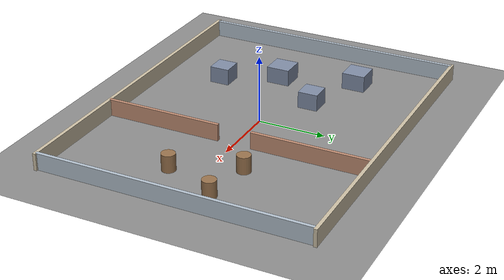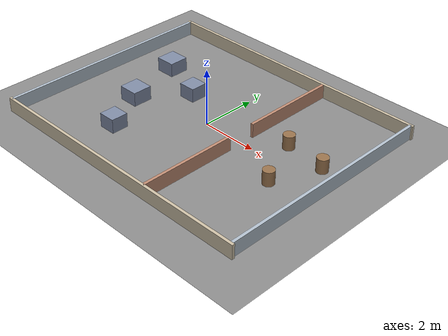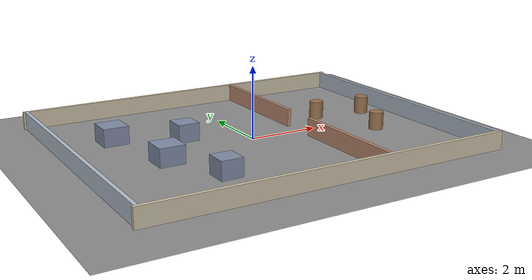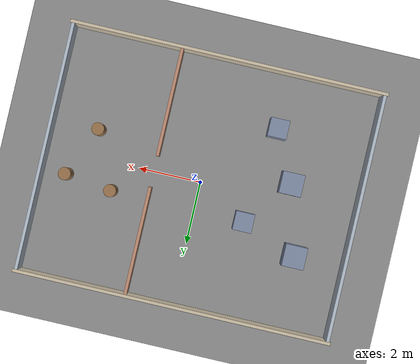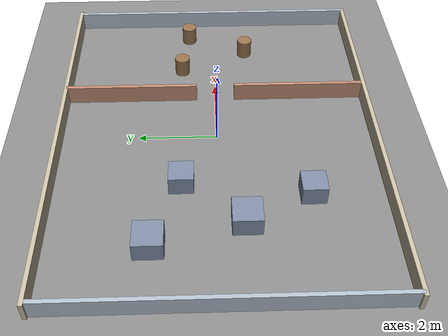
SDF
<?xml version="1.0" ?>
<!-- BARQ obstacle course (10 x 8 m): doorway -> slalom -> box field. Corridors ~1 m
     (footprint r=0.18 + inflation 0.30). All obstacles 0.5 m tall (lidar plane 0.21 m). -->
<sdf version="1.8">
  <world name="barq_course">
    <physics name="1ms" type="ignored">
      <max_step_size>0.001</max_step_size>
      <real_time_factor>1.0</real_time_factor>
    </physics>

    <plugin filename="ignition-gazebo-physics-system"
            name="ignition::gazebo::systems::Physics"/>
    <plugin filename="ignition-gazebo-user-commands-system"
            name="ignition::gazebo::systems::UserCommands"/>
    <plugin filename="ignition-gazebo-scene-broadcaster-system"
            name="ignition::gazebo::systems::SceneBroadcaster"/>
    <plugin filename="ignition-gazebo-contact-system"
            name="ignition::gazebo::systems::Contact"/>
    <plugin filename="ignition-gazebo-imu-system"
            name="ignition::gazebo::systems::Imu"/>
    <plugin filename="ignition-gazebo-sensors-system"
            name="ignition::gazebo::systems::Sensors">
      <render_engine>ogre2</render_engine>
    </plugin>

    <light type="directional" name="sun">
      <cast_shadows>true</cast_shadows>
      <pose>0 0 10 0 0 0</pose>
      <diffuse>0.8 0.8 0.8 1</diffuse>
      <specular>0.2 0.2 0.2 1</specular>
      <direction>-0.5 0.1 -0.9</direction>
    </light>

    <model name="course">
      <static>true</static>
      <link name="parts">
        <!-- outer walls (10 x 8) -->
        <collision name="wn"><pose>0 4 0.25 0 0 0</pose><geometry><box><size>10.2 0.1 0.5</size></box></geometry></collision>
        <visual name="wnv"><pose>0 4 0.25 0 0 0</pose><geometry><box><size>10.2 0.1 0.5</size></box></geometry>
          <material><ambient>0.8 0.75 0.65 1</ambient><diffuse>0.8 0.75 0.65 1</diffuse></material></visual>
        <collision name="ws"><pose>0 -4 0.25 0 0 0</pose><geometry><box><size>10.2 0.1 0.5</size></box></geometry></collision>
        <visual name="wsv"><pose>0 -4 0.25 0 0 0</pose><geometry><box><size>10.2 0.1 0.5</size></box></geometry>
          <material><ambient>0.8 0.75 0.65 1</ambient><diffuse>0.8 0.75 0.65 1</diffuse></material></visual>
        <collision name="we"><pose>5 0 0.25 0 0 0</pose><geometry><box><size>0.1 8 0.5</size></box></geometry></collision>
        <visual name="wev"><pose>5 0 0.25 0 0 0</pose><geometry><box><size>0.1 8 0.5</size></box></geometry>
          <material><ambient>0.7 0.75 0.8 1</ambient><diffuse>0.7 0.75 0.8 1</diffuse></material></visual>
        <collision name="ww"><pose>-5 0 0.25 0 0 0</pose><geometry><box><size>0.1 8 0.5</size></box></geometry></collision>
        <visual name="wwv"><pose>-5 0 0.25 0 0 0</pose><geometry><box><size>0.1 8 0.5</size></box></geometry>
          <material><ambient>0.7 0.75 0.8 1</ambient><diffuse>0.7 0.75 0.8 1</diffuse></material></visual>

        <!-- doorway wall at x=1.5 with a 1.0 m gap centered on y=0 -->
        <collision name="d1"><pose>1.5 2.25 0.25 0 0 0</pose><geometry><box><size>0.1 3.5 0.5</size></box></geometry></collision>
        <visual name="d1v"><pose>1.5 2.25 0.25 0 0 0</pose><geometry><box><size>0.1 3.5 0.5</size></box></geometry>
          <material><ambient>0.75 0.55 0.45 1</ambient><diffuse>0.75 0.55 0.45 1</diffuse></material></visual>
        <collision name="d2"><pose>1.5 -2.25 0.25 0 0 0</pose><geometry><box><size>0.1 3.5 0.5</size></box></geometry></collision>
        <visual name="d2v"><pose>1.5 -2.25 0.25 0 0 0</pose><geometry><box><size>0.1 3.5 0.5</size></box></geometry>
          <material><ambient>0.75 0.55 0.45 1</ambient><diffuse>0.75 0.55 0.45 1</diffuse></material></visual>

        <!-- slalom pillars beyond the doorway -->
        <collision name="s1"><pose>2.7 0.9 0.25 0 0 0</pose><geometry><cylinder><radius>0.2</radius><length>0.5</length></cylinder></geometry></collision>
        <visual name="s1v"><pose>2.7 0.9 0.25 0 0 0</pose><geometry><cylinder><radius>0.2</radius><length>0.5</length></cylinder></geometry>
          <material><ambient>0.6 0.45 0.3 1</ambient><diffuse>0.6 0.45 0.3 1</diffuse></material></visual>
        <collision name="s2"><pose>3.5 -0.9 0.25 0 0 0</pose><geometry><cylinder><radius>0.2</radius><length>0.5</length></cylinder></geometry></collision>
        <visual name="s2v"><pose>3.5 -0.9 0.25 0 0 0</pose><geometry><cylinder><radius>0.2</radius><length>0.5</length></cylinder></geometry>
          <material><ambient>0.6 0.45 0.3 1</ambient><diffuse>0.6 0.45 0.3 1</diffuse></material></visual>
        <collision name="s3"><pose>4.2 0.7 0.25 0 0 0</pose><geometry><cylinder><radius>0.2</radius><length>0.5</length></cylinder></geometry></collision>
        <visual name="s3v"><pose>4.2 0.7 0.25 0 0 0</pose><geometry><cylinder><radius>0.2</radius><length>0.5</length></cylinder></geometry>
          <material><ambient>0.6 0.45 0.3 1</ambient><diffuse>0.6 0.45 0.3 1</diffuse></material></visual>

        <!-- box field west of start -->
        <collision name="b1"><pose>-1.6 0.9 0.25 0 0 0</pose><geometry><box><size>0.6 0.6 0.5</size></box></geometry></collision>
        <visual name="b1v"><pose>-1.6 0.9 0.25 0 0 0</pose><geometry><box><size>0.6 0.6 0.5</size></box></geometry>
          <material><ambient>0.5 0.55 0.65 1</ambient><diffuse>0.5 0.55 0.65 1</diffuse></material></visual>
        <collision name="b2"><pose>-2.8 -0.6 0.25 0 0 0</pose><geometry><box><size>0.7 0.7 0.5</size></box></geometry></collision>
        <visual name="b2v"><pose>-2.8 -0.6 0.25 0 0 0</pose><geometry><box><size>0.7 0.7 0.5</size></box></geometry>
          <material><ambient>0.5 0.55 0.65 1</ambient><diffuse>0.5 0.55 0.65 1</diffuse></material></visual>
        <collision name="b3"><pose>-2.0 -2.2 0.25 0 0 0</pose><geometry><box><size>0.6 0.6 0.5</size></box></geometry></collision>
        <visual name="b3v"><pose>-2.0 -2.2 0.25 0 0 0</pose><geometry><box><size>0.6 0.6 0.5</size></box></geometry>
          <material><ambient>0.5 0.55 0.65 1</ambient><diffuse>0.5 0.55 0.65 1</diffuse></material></visual>
        <collision name="b4"><pose>-3.4 1.6 0.25 0 0 0</pose><geometry><box><size>0.7 0.7 0.5</size></box></geometry></collision>
        <visual name="b4v"><pose>-3.4 1.6 0.25 0 0 0</pose><geometry><box><size>0.7 0.7 0.5</size></box></geometry>
          <material><ambient>0.5 0.55 0.65 1</ambient><diffuse>0.5 0.55 0.65 1</diffuse></material></visual>
      </link>
    </model>

    <model name="ground_plane">
      <static>true</static>
      <link name="link">
        <collision name="collision">
          <geometry><plane><normal>0 0 1</normal><size>24 24</size></plane></geometry>
          <surface><friction><ode><mu>1.0</mu><mu2>1.0</mu2></ode></friction></surface>
        </collision>
        <visual name="visual">
          <geometry><plane><normal>0 0 1</normal><size>24 24</size></plane></geometry>
          <material><ambient>0.55 0.55 0.55 1</ambient><diffuse>0.55 0.55 0.55 1</diffuse></material>
        </visual>
      </link>
    </model>
  </world>
</sdf>
